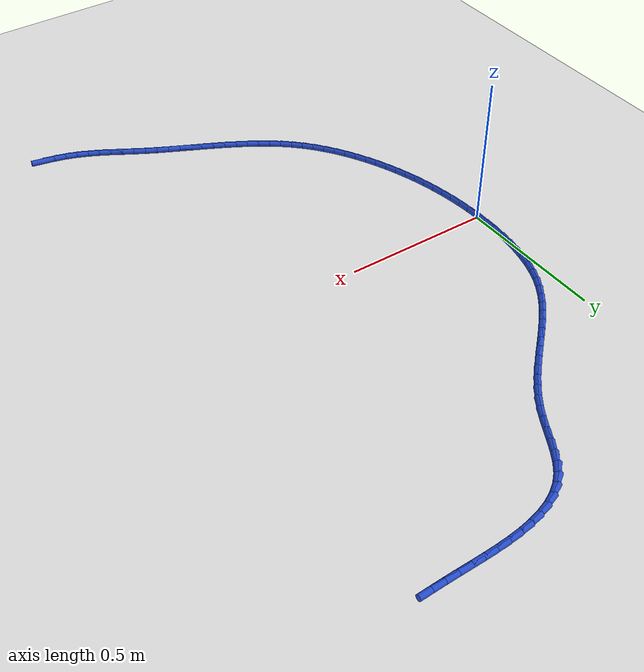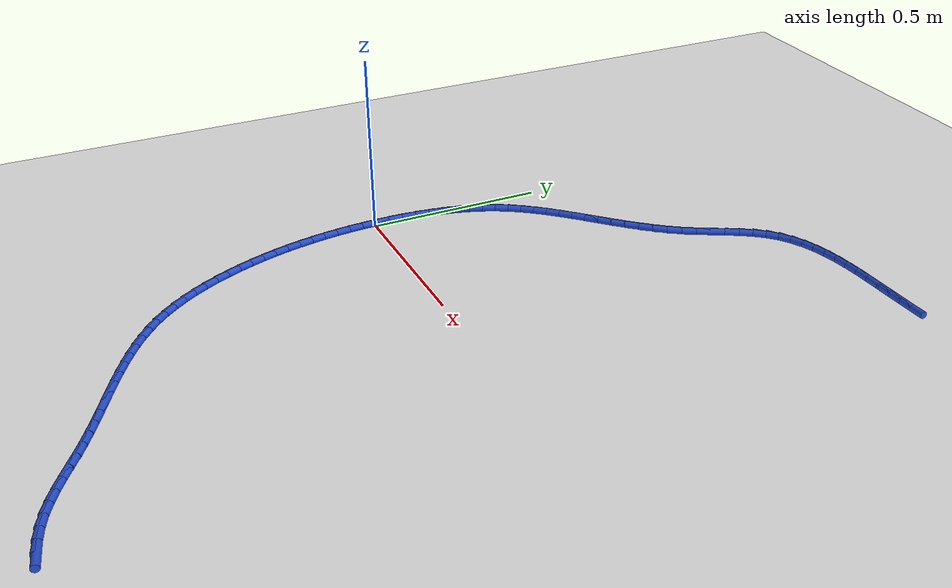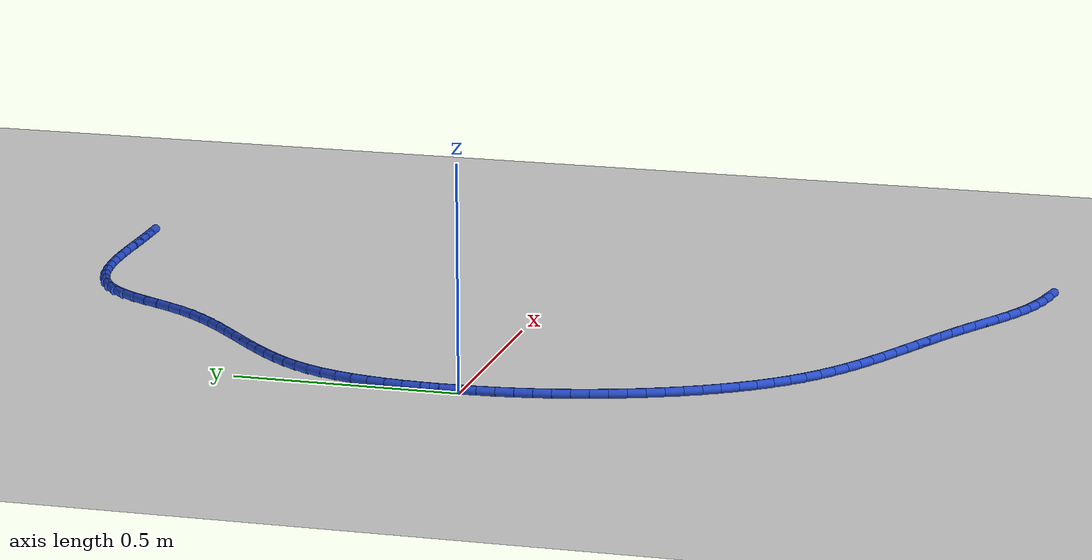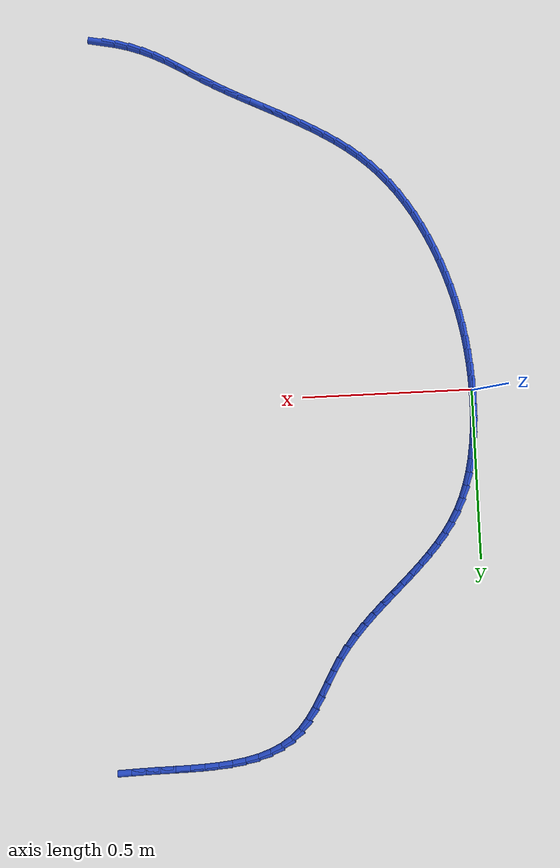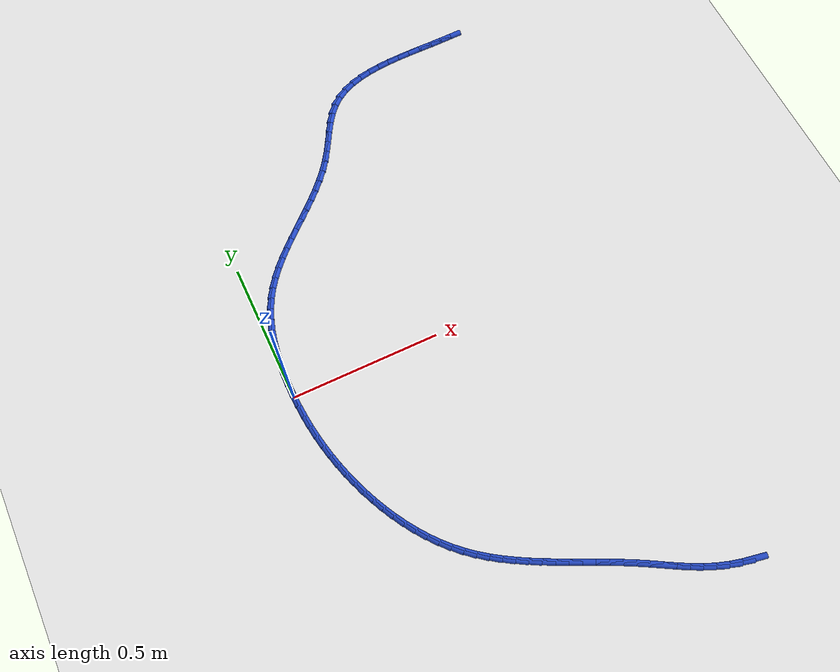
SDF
<sdf version="1.6">
 <world name="default">
  <model name="ground_plane">
   <static>1</static>
   <link name="link">
    <collision name="collision">
     <geometry><plane><normal>0 0 1</normal><size>100 100</size></plane></geometry>
     <surface><friction><ode><mu>100</mu><mu2>50</mu2></ode></friction></surface>
    </collision>
    <visual name="visual">
     <cast_shadows>0</cast_shadows>
     <geometry><plane><normal>0 0 1</normal><size>100 100</size></plane></geometry>
     <material>
      <script><uri>file://media/materials/scripts/gazebo.material</uri><name>Gazebo/WhiteGlow</name></script>
     </material>
    </visual>
   </link>
  </model>
  <model name="line">
   <link name="link_0">
    <pose>5.204170427930421e-18 2.7755575615628914e-17 0.01 0 1.57 -1.560474673501116</pose>
    <collision name="collision">
     <geometry><cylinder><radius>0.01</radius><length>0.08</length></cylinder></geometry>
    </collision>
    <visual name="visual">
     <material>
      <script><name>Gazebo/Blue</name><uri>file://media/materials/scripts/gazebo.material</uri></script>
     </material>
     <geometry><cylinder><radius>0.01</radius><length>0.08</length></cylinder></geometry>
    </visual>
   </link>
   <link name="link_1">
    <pose>-0.00041939425661725123 0.040631025957992235 0.01 0 1.57 1.5458353956558755</pose>
    <collision name="collision">
     <geometry><cylinder><radius>0.01</radius><length>0.08</length></cylinder></geometry>
    </collision>
    <visual name="visual">
     <material>
      <script><name>Gazebo/Blue</name><uri>file://media/materials/scripts/gazebo.material</uri></script>
     </material>
     <geometry><cylinder><radius>0.01</radius><length>0.08</length></cylinder></geometry>
    </visual>
   </link>
   <link name="link_2">
    <pose>0.0005989403063009725 0.08141969117231324 0.01 0 1.57 1.5063570734725502</pose>
    <collision name="collision">
     <geometry><cylinder><radius>0.01</radius><length>0.08</length></cylinder></geometry>
    </collision>
    <visual name="visual">
     <material>
      <script><name>Gazebo/Blue</name><uri>file://media/materials/scripts/gazebo.material</uri></script>
     </material>
     <geometry><cylinder><radius>0.01</radius><length>0.08</length></cylinder></geometry>
    </visual>
   </link>
   <link name="link_3">
    <pose>0.0032256557730024477 0.12212591579390611 0.01 0 1.57 1.4621289086431264</pose>
    <collision name="collision">
     <geometry><cylinder><radius>0.01</radius><length>0.08</length></cylinder></geometry>
    </collision>
    <visual name="visual">
     <material>
      <script><name>Gazebo/Blue</name><uri>file://media/materials/scripts/gazebo.material</uri></script>
     </material>
     <geometry><cylinder><radius>0.01</radius><length>0.08</length></cylinder></geometry>
    </visual>
   </link>
   <link name="link_4">
    <pose>0.007631404227734949 0.16250961997371421 0.01 0 1.57 1.412531463375703</pose>
    <collision name="collision">
     <geometry><cylinder><radius>0.01</radius><length>0.08</length></cylinder></geometry>
    </collision>
    <visual name="visual">
     <material>
      <script><name>Gazebo/Blue</name><uri>file://media/materials/scripts/gazebo.material</uri></script>
     </material>
     <geometry><cylinder><radius>0.01</radius><length>0.08</length></cylinder></geometry>
    </visual>
   </link>
   <link name="link_5">
    <pose>0.013986837754746233 0.20233072386268047 0.01 0 1.57 1.3568946053607458</pose>
    <collision name="collision">
     <geometry><cylinder><radius>0.01</radius><length>0.08</length></cylinder></geometry>
    </collision>
    <visual name="visual">
     <material>
      <script><name>Gazebo/Blue</name><uri>file://media/materials/scripts/gazebo.material</uri></script>
     </material>
     <geometry><cylinder><radius>0.01</radius><length>0.08</length></cylinder></geometry>
    </visual>
   </link>
   <link name="link_6">
    <pose>0.022462608438284078 0.2413491476117482 0.01 0 1.57 1.2945289646001075</pose>
    <collision name="collision">
     <geometry><cylinder><radius>0.01</radius><length>0.08</length></cylinder></geometry>
    </collision>
    <visual name="visual">
     <material>
      <script><name>Gazebo/Blue</name><uri>file://media/materials/scripts/gazebo.material</uri></script>
     </material>
     <geometry><cylinder><radius>0.01</radius><length>0.08</length></cylinder></geometry>
    </visual>
   </link>
   <link name="link_7">
    <pose>0.03322936836259625 0.2793248113718606 0.01 0 1.57 1.2247827890572607</pose>
    <collision name="collision">
     <geometry><cylinder><radius>0.01</radius><length>0.08</length></cylinder></geometry>
    </collision>
    <visual name="visual">
     <material>
      <script><name>Gazebo/Blue</name><uri>file://media/materials/scripts/gazebo.material</uri></script>
     </material>
     <geometry><cylinder><radius>0.01</radius><length>0.08</length></cylinder></geometry>
    </visual>
   </link>
   <link name="link_8">
    <pose>0.04645776961193051 0.31601763529396065 0.01 0 1.57 1.1471331357674486</pose>
    <collision name="collision">
     <geometry><cylinder><radius>0.01</radius><length>0.08</length></cylinder></geometry>
    </collision>
    <visual name="visual">
     <material>
      <script><name>Gazebo/Blue</name><uri>file://media/materials/scripts/gazebo.material</uri></script>
     </material>
     <geometry><cylinder><radius>0.01</radius><length>0.08</length></cylinder></geometry>
    </visual>
   </link>
   <link name="link_9">
    <pose>0.062318464270534626 0.3511875395289916 0.01 0 1.57 1.0624089288465834</pose>
    <collision name="collision">
     <geometry><cylinder><radius>0.01</radius><length>0.08</length></cylinder></geometry>
    </collision>
    <visual name="visual">
     <material>
      <script><name>Gazebo/Blue</name><uri>file://media/materials/scripts/gazebo.material</uri></script>
     </material>
     <geometry><cylinder><radius>0.01</radius><length>0.08</length></cylinder></geometry>
    </visual>
   </link>
   <link name="link_10">
    <pose>0.08095076888299968 0.3846240996175285 0.01 0 1.57 0.9821560411608776</pose>
    <collision name="collision">
     <geometry><cylinder><radius>0.01</radius><length>0.08</length></cylinder></geometry>
    </collision>
    <visual name="visual">
     <material>
      <script><name>Gazebo/Blue</name><uri>file://media/materials/scripts/gazebo.material</uri></script>
     </material>
     <geometry><cylinder><radius>0.01</radius><length>0.08</length></cylinder></geometry>
    </visual>
   </link>
   <link name="link_11">
    <pose>0.10217593487862389 0.4164179021893304 0.01 0 1.57 0.9139354953950708</pose>
    <collision name="collision">
     <geometry><cylinder><radius>0.01</radius><length>0.08</length></cylinder></geometry>
    </collision>
    <visual name="visual">
     <material>
      <script><name>Gazebo/Blue</name><uri>file://media/materials/scripts/gazebo.material</uri></script>
     </material>
     <geometry><cylinder><radius>0.01</radius><length>0.08</length></cylinder></geometry>
    </visual>
   </link>
   <link name="link_12">
    <pose>0.12563001481334368 0.446834802748064 0.01 0 1.57 0.8583358593702851</pose>
    <collision name="collision">
     <geometry><cylinder><radius>0.01</radius><length>0.08</length></cylinder></geometry>
    </collision>
    <visual name="visual">
     <material>
      <script><name>Gazebo/Blue</name><uri>file://media/materials/scripts/gazebo.material</uri></script>
     </material>
     <geometry><cylinder><radius>0.01</radius><length>0.08</length></cylinder></geometry>
    </visual>
   </link>
   <link name="link_13">
    <pose>0.1509467605462268 0.4761428341354215 0.01 0 1.57 0.8153100233511009</pose>
    <collision name="collision">
     <geometry><cylinder><radius>0.01</radius><length>0.08</length></cylinder></geometry>
    </collision>
    <visual name="visual">
     <material>
      <script><name>Gazebo/Blue</name><uri>file://media/materials/scripts/gazebo.material</uri></script>
     </material>
     <geometry><cylinder><radius>0.01</radius><length>0.08</length></cylinder></geometry>
    </visual>
   </link>
   <link name="link_14">
    <pose>0.17775992393634085 0.5046100291930952 0.01 0 1.57 0.7845216713008123</pose>
    <collision name="collision">
     <geometry><cylinder><radius>0.01</radius><length>0.08</length></cylinder></geometry>
    </collision>
    <visual name="visual">
     <material>
      <script><name>Gazebo/Blue</name><uri>file://media/materials/scripts/gazebo.material</uri></script>
     </material>
     <geometry><cylinder><radius>0.01</radius><length>0.08</length></cylinder></geometry>
    </visual>
   </link>
   <link name="link_15">
    <pose>0.2057032568427537 0.5325044207627777 0.01 0 1.57 0.7655482772136365</pose>
    <collision name="collision">
     <geometry><cylinder><radius>0.01</radius><length>0.08</length></cylinder></geometry>
    </collision>
    <visual name="visual">
     <material>
      <script><name>Gazebo/Blue</name><uri>file://media/materials/scripts/gazebo.material</uri></script>
     </material>
     <geometry><cylinder><radius>0.01</radius><length>0.08</length></cylinder></geometry>
    </visual>
   </link>
   <link name="link_16">
    <pose>0.2344105111245332 0.5600940416861612 0.01 0 1.57 0.7580117123435444</pose>
    <collision name="collision">
     <geometry><cylinder><radius>0.01</radius><length>0.08</length></cylinder></geometry>
    </collision>
    <visual name="visual">
     <material>
      <script><name>Gazebo/Blue</name><uri>file://media/materials/scripts/gazebo.material</uri></script>
     </material>
     <geometry><cylinder><radius>0.01</radius><length>0.08</length></cylinder></geometry>
    </visual>
   </link>
   <link name="link_17">
    <pose>0.26351543864074695 0.5876469248049384 0.01 0 1.57 0.7616471518119733</pose>
    <collision name="collision">
     <geometry><cylinder><radius>0.01</radius><length>0.08</length></cylinder></geometry>
    </collision>
    <visual name="visual">
     <material>
      <script><name>Gazebo/Blue</name><uri>file://media/materials/scripts/gazebo.material</uri></script>
     </material>
     <geometry><cylinder><radius>0.01</radius><length>0.08</length></cylinder></geometry>
    </visual>
   </link>
   <link name="link_18">
    <pose>0.29265179125046276 0.6154311029608015 0.01 0 1.57 0.7763238183701574</pose>
    <collision name="collision">
     <geometry><cylinder><radius>0.01</radius><length>0.08</length></cylinder></geometry>
    </collision>
    <visual name="visual">
     <material>
      <script><name>Gazebo/Blue</name><uri>file://media/materials/scripts/gazebo.material</uri></script>
     </material>
     <geometry><cylinder><radius>0.01</radius><length>0.08</length></cylinder></geometry>
    </visual>
   </link>
   <link name="link_19">
    <pose>0.32145332081274836 0.6437146089954429 0.01 0 1.57 0.802026313014735</pose>
    <collision name="collision">
     <geometry><cylinder><radius>0.01</radius><length>0.08</length></cylinder></geometry>
    </collision>
    <visual name="visual">
     <material>
      <script><name>Gazebo/Blue</name><uri>file://media/materials/scripts/gazebo.material</uri></script>
     </material>
     <geometry><cylinder><radius>0.01</radius><length>0.08</length></cylinder></geometry>
    </visual>
   </link>
   <link name="link_20">
    <pose>0.3495537791866714 0.6727654757505548 0.01 0 1.57 0.8387989102687063</pose>
    <collision name="collision">
     <geometry><cylinder><radius>0.01</radius><length>0.08</length></cylinder></geometry>
    </collision>
    <visual name="visual">
     <material>
      <script><name>Gazebo/Blue</name><uri>file://media/materials/scripts/gazebo.material</uri></script>
     </material>
     <geometry><cylinder><radius>0.01</radius><length>0.08</length></cylinder></geometry>
    </visual>
   </link>
   <link name="link_21">
    <pose>0.3765869182312999 0.7028517360678301 0.01 0 1.57 0.8866508350229066</pose>
    <collision name="collision">
     <geometry><cylinder><radius>0.01</radius><length>0.08</length></cylinder></geometry>
    </collision>
    <visual name="visual">
     <material>
      <script><name>Gazebo/Blue</name><uri>file://media/materials/scripts/gazebo.material</uri></script>
     </material>
     <geometry><cylinder><radius>0.01</radius><length>0.08</length></cylinder></geometry>
    </visual>
   </link>
   <link name="link_22">
    <pose>0.4021864898057013 0.7342414227889607 0.01 0 1.57 0.945421279363909</pose>
    <collision name="collision">
     <geometry><cylinder><radius>0.01</radius><length>0.08</length></cylinder></geometry>
    </collision>
    <visual name="visual">
     <material>
      <script><name>Gazebo/Blue</name><uri>file://media/materials/scripts/gazebo.material</uri></script>
     </material>
     <geometry><cylinder><radius>0.01</radius><length>0.08</length></cylinder></geometry>
    </visual>
   </link>
   <link name="link_23">
    <pose>0.4259862457689436 0.7672025687556392 0.01 0 1.57 1.0120313819367213</pose>
    <collision name="collision">
     <geometry><cylinder><radius>0.01</radius><length>0.08</length></cylinder></geometry>
    </collision>
    <visual name="visual">
     <material>
      <script><name>Gazebo/Blue</name><uri>file://media/materials/scripts/gazebo.material</uri></script>
     </material>
     <geometry><cylinder><radius>0.01</radius><length>0.08</length></cylinder></geometry>
    </visual>
   </link>
   <link name="link_24">
    <pose>0.44769590768977613 0.8019252303119604 0.01 0 1.57 1.0593090772187204</pose>
    <collision name="collision">
     <geometry><cylinder><radius>0.01</radius><length>0.08</length></cylinder></geometry>
    </collision>
    <visual name="visual">
     <material>
      <script><name>Gazebo/Blue</name><uri>file://media/materials/scripts/gazebo.material</uri></script>
     </material>
     <geometry><cylinder><radius>0.01</radius><length>0.08</length></cylinder></geometry>
    </visual>
   </link>
   <link name="link_25">
    <pose>0.4678223544851671 0.8377812490384116 0.01 0 1.57 1.07231941583553</pose>
    <collision name="collision">
     <geometry><cylinder><radius>0.01</radius><length>0.08</length></cylinder></geometry>
    </collision>
    <visual name="visual">
     <material>
      <script><name>Gazebo/Blue</name><uri>file://media/materials/scripts/gazebo.material</uri></script>
     </material>
     <geometry><cylinder><radius>0.01</radius><length>0.08</length></cylinder></geometry>
    </visual>
   </link>
   <link name="link_26">
    <pose>0.4873486699594717 0.8736536823748919 0.01 0 1.57 1.0505722540732303</pose>
    <collision name="collision">
     <geometry><cylinder><radius>0.01</radius><length>0.08</length></cylinder></geometry>
    </collision>
    <visual name="visual">
     <material>
      <script><name>Gazebo/Blue</name><uri>file://media/materials/scripts/gazebo.material</uri></script>
     </material>
     <geometry><cylinder><radius>0.01</radius><length>0.08</length></cylinder></geometry>
    </visual>
   </link>
   <link name="link_27">
    <pose>0.5072643263870428 0.9084190305358298 0.01 0 1.57 0.9912541114067657</pose>
    <collision name="collision">
     <geometry><cylinder><radius>0.01</radius><length>0.08</length></cylinder></geometry>
    </collision>
    <visual name="visual">
     <material>
      <script><name>Gazebo/Blue</name><uri>file://media/materials/scripts/gazebo.material</uri></script>
     </material>
     <geometry><cylinder><radius>0.01</radius><length>0.08</length></cylinder></geometry>
    </visual>
   </link>
   <link name="link_28">
    <pose>0.5285587960422333 0.940953793735653 0.01 0 1.57 0.889441335161986</pose>
    <collision name="collision">
     <geometry><cylinder><radius>0.01</radius><length>0.08</length></cylinder></geometry>
    </collision>
    <visual name="visual">
     <material>
      <script><name>Gazebo/Blue</name><uri>file://media/materials/scripts/gazebo.material</uri></script>
     </material>
     <geometry><cylinder><radius>0.01</radius><length>0.08</length></cylinder></geometry>
    </visual>
   </link>
   <link name="link_29">
    <pose>0.5522215511993964 0.9701344721887895 0.01 0 1.57 0.7428690734591776</pose>
    <collision name="collision">
     <geometry><cylinder><radius>0.01</radius><length>0.08</length></cylinder></geometry>
    </collision>
    <visual name="visual">
     <material>
      <script><name>Gazebo/Blue</name><uri>file://media/materials/scripts/gazebo.material</uri></script>
     </material>
     <geometry><cylinder><radius>0.01</radius><length>0.08</length></cylinder></geometry>
    </visual>
   </link>
   <link name="link_30">
    <pose>0.5791879028655661 0.9948994117107092 0.01 0 1.57 0.5851730743979048</pose>
    <collision name="collision">
     <geometry><cylinder><radius>0.01</radius><length>0.08</length></cylinder></geometry>
    </collision>
    <visual name="visual">
     <material>
      <script><name>Gazebo/Blue</name><uri>file://media/materials/scripts/gazebo.material</uri></script>
     </material>
     <geometry><cylinder><radius>0.01</radius><length>0.08</length></cylinder></geometry>
    </visual>
   </link>
   <link name="link_31">
    <pose>0.6096235933495142 1.0150657122717237 0.01 0 1.57 0.44652051022033024</pose>
    <collision name="collision">
     <geometry><cylinder><radius>0.01</radius><length>0.08</length></cylinder></geometry>
    </collision>
    <visual name="visual">
     <material>
      <script><name>Gazebo/Blue</name><uri>file://media/materials/scripts/gazebo.material</uri></script>
     </material>
     <geometry><cylinder><radius>0.01</radius><length>0.08</length></cylinder></geometry>
    </visual>
   </link>
   <link name="link_32">
    <pose>0.6431221680921743 1.0311038532949905 0.01 0 1.57 0.3304124110964919</pose>
    <collision name="collision">
     <geometry><cylinder><radius>0.01</radius><length>0.08</length></cylinder></geometry>
    </collision>
    <visual name="visual">
     <material>
      <script><name>Gazebo/Blue</name><uri>file://media/materials/scripts/gazebo.material</uri></script>
     </material>
     <geometry><cylinder><radius>0.01</radius><length>0.08</length></cylinder></geometry>
    </visual>
   </link>
   <link name="link_33">
    <pose>0.6792635755675412 1.0434998402914855 0.01 0 1.57 0.2363441870183302</pose>
    <collision name="collision">
     <geometry><cylinder><radius>0.01</radius><length>0.08</length></cylinder></geometry>
    </collision>
    <visual name="visual">
     <material>
      <script><name>Gazebo/Blue</name><uri>file://media/materials/scripts/gazebo.material</uri></script>
     </material>
     <geometry><cylinder><radius>0.01</radius><length>0.08</length></cylinder></geometry>
    </visual>
   </link>
   <link name="link_34">
    <pose>0.7176277642496095 1.0527396787721834 0.01 0 1.57 0.16212432237030058</pose>
    <collision name="collision">
     <geometry><cylinder><radius>0.01</radius><length>0.08</length></cylinder></geometry>
    </collision>
    <visual name="visual">
     <material>
      <script><name>Gazebo/Blue</name><uri>file://media/materials/scripts/gazebo.material</uri></script>
     </material>
     <geometry><cylinder><radius>0.01</radius><length>0.08</length></cylinder></geometry>
    </visual>
   </link>
   <link name="link_35">
    <pose>0.7577946826123735 1.0593093742480604 0.01 0 1.57 0.10516058293300554</pose>
    <collision name="collision">
     <geometry><cylinder><radius>0.01</radius><length>0.08</length></cylinder></geometry>
    </collision>
    <visual name="visual">
     <material>
      <script><name>Gazebo/Blue</name><uri>file://media/materials/scripts/gazebo.material</uri></script>
     </material>
     <geometry><cylinder><radius>0.01</radius><length>0.08</length></cylinder></geometry>
    </visual>
   </link>
   <link name="link_36">
    <pose>0.7993442791298286 1.0636949322300915 0.01 0 1.57 0.0631313665549837</pose>
    <collision name="collision">
     <geometry><cylinder><radius>0.01</radius><length>0.08</length></cylinder></geometry>
    </collision>
    <visual name="visual">
     <material>
      <script><name>Gazebo/Blue</name><uri>file://media/materials/scripts/gazebo.material</uri></script>
     </material>
     <geometry><cylinder><radius>0.01</radius><length>0.08</length></cylinder></geometry>
    </visual>
   </link>
   <link name="link_37">
    <pose>0.8418565022759693 1.0663823582292529 0.01 0 1.57 0.03425222261847</pose>
    <collision name="collision">
     <geometry><cylinder><radius>0.01</radius><length>0.08</length></cylinder></geometry>
    </collision>
    <visual name="visual">
     <material>
      <script><name>Gazebo/Blue</name><uri>file://media/materials/scripts/gazebo.material</uri></script>
     </material>
     <geometry><cylinder><radius>0.01</radius><length>0.08</length></cylinder></geometry>
    </visual>
   </link>
   <link name="link_38">
    <pose>0.8849113005247897 1.0678576577565195 0.01 0 1.57 0.017349464130928447</pose>
    <collision name="collision">
     <geometry><cylinder><radius>0.01</radius><length>0.08</length></cylinder></geometry>
    </collision>
    <visual name="visual">
     <material>
      <script><name>Gazebo/Blue</name><uri>file://media/materials/scripts/gazebo.material</uri></script>
     </material>
     <geometry><cylinder><radius>0.01</radius><length>0.08</length></cylinder></geometry>
    </visual>
   </link>
   <link name="link_39">
    <pose>0.9280886223502853 1.0686068363228671 0.01 0 1.57 0.011871307122232182</pose>
    <collision name="collision">
     <geometry><cylinder><radius>0.01</radius><length>0.08</length></cylinder></geometry>
    </collision>
    <visual name="visual">
     <material>
      <script><name>Gazebo/Blue</name><uri>file://media/materials/scripts/gazebo.material</uri></script>
     </material>
     <geometry><cylinder><radius>0.01</radius><length>0.08</length></cylinder></geometry>
    </visual>
   </link>
   <link name="link_40">
    <pose>0.9709684162264505 1.0691158994392713 0.01 0 1.57 0.01777152209160328</pose>
    <collision name="collision">
     <geometry><cylinder><radius>0.01</radius><length>0.08</length></cylinder></geometry>
    </collision>
    <visual name="visual">
     <material>
      <script><name>Gazebo/Blue</name><uri>file://media/materials/scripts/gazebo.material</uri></script>
     </material>
     <geometry><cylinder><radius>0.01</radius><length>0.08</length></cylinder></geometry>
    </visual>
   </link>
   <link name="link_41">
    <pose>1.0131344743179589 1.0698653333709778 0.01 0 1.57 0.028245616850283622</pose>
    <collision name="collision">
     <geometry><cylinder><radius>0.01</radius><length>0.08</length></cylinder></geometry>
    </collision>
    <visual name="visual">
     <material>
      <script><name>Gazebo/Blue</name><uri>file://media/materials/scripts/gazebo.material</uri></script>
     </material>
     <geometry><cylinder><radius>0.01</radius><length>0.08</length></cylinder></geometry>
    </visual>
   </link>
   <link name="link_42">
    <pose>1.0543829213023512 1.071030731140544 0.01 0 1.57 0.032102971587393156</pose>
    <collision name="collision">
     <geometry><cylinder><radius>0.01</radius><length>0.08</length></cylinder></geometry>
    </collision>
    <visual name="visual">
     <material>
      <script><name>Gazebo/Blue</name><uri>file://media/materials/scripts/gazebo.material</uri></script>
     </material>
     <geometry><cylinder><radius>0.01</radius><length>0.08</length></cylinder></geometry>
    </visual>
   </link>
   <link name="link_129">
    <pose>1.0430165044025075 -1.0834563771202934 0.01 0 1.57 -0.1924655537536434</pose>
    <collision name="collision">
     <geometry><cylinder><radius>0.01</radius><length>0.08</length></cylinder></geometry>
    </collision>
    <visual name="visual">
     <material>
      <script><name>Gazebo/Blue</name><uri>file://media/materials/scripts/gazebo.material</uri></script>
     </material>
     <geometry><cylinder><radius>0.01</radius><length>0.08</length></cylinder></geometry>
    </visual>
   </link>
   <link name="link_130">
    <pose>1.003807774819887 -1.0758154660543615 0.01 0 1.57 -0.26107178223244676</pose>
    <collision name="collision">
     <geometry><cylinder><radius>0.01</radius><length>0.08</length></cylinder></geometry>
    </collision>
    <visual name="visual">
     <material>
      <script><name>Gazebo/Blue</name><uri>file://media/materials/scripts/gazebo.material</uri></script>
     </material>
     <geometry><cylinder><radius>0.01</radius><length>0.08</length></cylinder></geometry>
    </visual>
   </link>
   <link name="link_131">
    <pose>0.9654360566328103 -1.0655637133302607 0.01 0 1.57 -0.3324941737917384</pose>
    <collision name="collision">
     <geometry><cylinder><radius>0.01</radius><length>0.08</length></cylinder></geometry>
    </collision>
    <visual name="visual">
     <material>
      <script><name>Gazebo/Blue</name><uri>file://media/materials/scripts/gazebo.material</uri></script>
     </material>
     <geometry><cylinder><radius>0.01</radius><length>0.08</length></cylinder></geometry>
    </visual>
   </link>
   <link name="link_132">
    <pose>0.928106527487957 -1.052673302264326 0.01 0 1.57 -0.4043941610660592</pose>
    <collision name="collision">
     <geometry><cylinder><radius>0.01</radius><length>0.08</length></cylinder></geometry>
    </collision>
    <visual name="visual">
     <material>
      <script><name>Gazebo/Blue</name><uri>file://media/materials/scripts/gazebo.material</uri></script>
     </material>
     <geometry><cylinder><radius>0.01</radius><length>0.08</length></cylinder></geometry>
    </visual>
   </link>
   <link name="link_133">
    <pose>0.8919543679589335 -1.0372008096238938 0.01 0 1.57 -0.4629735728298897</pose>
    <collision name="collision">
     <geometry><cylinder><radius>0.01</radius><length>0.08</length></cylinder></geometry>
    </collision>
    <visual name="visual">
     <material>
      <script><name>Gazebo/Blue</name><uri>file://media/materials/scripts/gazebo.material</uri></script>
     </material>
     <geometry><cylinder><radius>0.01</radius><length>0.08</length></cylinder></geometry>
    </visual>
   </link>
   <link name="link_134">
    <pose>0.8567583962618535 -1.0196324679867008 0.01 0 1.57 -0.5034164021545839</pose>
    <collision name="collision">
     <geometry><cylinder><radius>0.01</radius><length>0.08</length></cylinder></geometry>
    </collision>
    <visual name="visual">
     <material>
      <script><name>Gazebo/Blue</name><uri>file://media/materials/scripts/gazebo.material</uri></script>
     </material>
     <geometry><cylinder><radius>0.01</radius><length>0.08</length></cylinder></geometry>
    </visual>
   </link>
   <link name="link_135">
    <pose>0.8221843078164646 -1.0005908988215266 0.01 0 1.57 -0.5257129185892814</pose>
    <collision name="collision">
     <geometry><cylinder><radius>0.01</radius><length>0.08</length></cylinder></geometry>
    </collision>
    <visual name="visual">
     <material>
      <script><name>Gazebo/Blue</name><uri>file://media/materials/scripts/gazebo.material</uri></script>
     </material>
     <geometry><cylinder><radius>0.01</radius><length>0.08</length></cylinder></geometry>
    </visual>
   </link>
   <link name="link_136">
    <pose>0.787897751823687 -0.9806987793218543 0.01 0 1.57 -0.5300755499299734</pose>
    <collision name="collision">
     <geometry><cylinder><radius>0.01</radius><length>0.08</length></cylinder></geometry>
    </collision>
    <visual name="visual">
     <material>
      <script><name>Gazebo/Blue</name><uri>file://media/materials/scripts/gazebo.material</uri></script>
     </material>
     <geometry><cylinder><radius>0.01</radius><length>0.08</length></cylinder></geometry>
    </visual>
   </link>
   <link name="link_137">
    <pose>0.7535643774844445 -0.9605787866811683 0.01 0 1.57 -0.5167364445341639</pose>
    <collision name="collision">
     <geometry><cylinder><radius>0.01</radius><length>0.08</length></cylinder></geometry>
    </collision>
    <visual name="visual">
     <material>
      <script><name>Gazebo/Blue</name><uri>file://media/materials/scripts/gazebo.material</uri></script>
     </material>
     <geometry><cylinder><radius>0.01</radius><length>0.08</length></cylinder></geometry>
    </visual>
   </link>
   <link name="link_138">
    <pose>0.7188502288026611 -0.9408529417222358 0.01 0 1.57 -0.4922605518929212</pose>
    <collision name="collision">
     <geometry><cylinder><radius>0.01</radius><length>0.08</length></cylinder></geometry>
    </collision>
    <visual name="visual">
     <material>
      <script><name>Gazebo/Blue</name><uri>file://media/materials/scripts/gazebo.material</uri></script>
     </material>
     <geometry><cylinder><radius>0.01</radius><length>0.08</length></cylinder></geometry>
    </visual>
   </link>
   <link name="link_139">
    <pose>0.6835535416041599 -0.9219234927740801 0.01 0 1.57 -0.47232345067953435</pose>
    <collision name="collision">
     <geometry><cylinder><radius>0.01</radius><length>0.08</length></cylinder></geometry>
    </collision>
    <visual name="visual">
     <material>
      <script><name>Gazebo/Blue</name><uri>file://media/materials/scripts/gazebo.material</uri></script>
     </material>
     <geometry><cylinder><radius>0.01</radius><length>0.08</length></cylinder></geometry>
    </visual>
   </link>
   <link name="link_140">
    <pose>0.6477958653806808 -0.9036551704161312 0.01 0 1.57 -0.4591729058862908</pose>
    <collision name="collision">
     <geometry><cylinder><radius>0.01</radius><length>0.08</length></cylinder></geometry>
    </collision>
    <visual name="visual">
     <material>
      <script><name>Gazebo/Blue</name><uri>file://media/materials/scripts/gazebo.material</uri></script>
     </material>
     <geometry><cylinder><radius>0.01</radius><length>0.08</length></cylinder></geometry>
    </visual>
   </link>
   <link name="link_141">
    <pose>0.6117472613696386 -0.8858320531332339 0.01 0 1.57 -0.45273096470674734</pose>
    <collision name="collision">
     <geometry><cylinder><radius>0.01</radius><length>0.08</length></cylinder></geometry>
    </collision>
    <visual name="visual">
     <material>
      <script><name>Gazebo/Blue</name><uri>file://media/materials/scripts/gazebo.material</uri></script>
     </material>
     <geometry><cylinder><radius>0.01</radius><length>0.08</length></cylinder></geometry>
    </visual>
   </link>
   <link name="link_142">
    <pose>0.5755777908084485 -0.8682382194102333 0.01 0 1.57 -0.4529675253703165</pose>
    <collision name="collision">
     <geometry><cylinder><radius>0.01</radius><length>0.08</length></cylinder></geometry>
    </collision>
    <visual name="visual">
     <material>
      <script><name>Gazebo/Blue</name><uri>file://media/materials/scripts/gazebo.material</uri></script>
     </material>
     <geometry><cylinder><radius>0.01</radius><length>0.08</length></cylinder></geometry>
    </visual>
   </link>
   <link name="link_143">
    <pose>0.5394575149345266 -0.850657747731975 0.01 0 1.57 -0.4599086367916293</pose>
    <collision name="collision">
     <geometry><cylinder><radius>0.01</radius><length>0.08</length></cylinder></geometry>
    </collision>
    <visual name="visual">
     <material>
      <script><name>Gazebo/Blue</name><uri>file://media/materials/scripts/gazebo.material</uri></script>
     </material>
     <geometry><cylinder><radius>0.01</radius><length>0.08</length></cylinder></geometry>
    </visual>
   </link>
   <link name="link_144">
    <pose>0.5035564949852879 -0.832874716583304 0.01 0 1.57 -0.4736368794539055</pose>
    <collision name="collision">
     <geometry><cylinder><radius>0.01</radius><length>0.08</length></cylinder></geometry>
    </collision>
    <visual name="visual">
     <material>
      <script><name>Gazebo/Blue</name><uri>file://media/materials/scripts/gazebo.material</uri></script>
     </material>
     <geometry><cylinder><radius>0.01</radius><length>0.08</length></cylinder></geometry>
    </visual>
   </link>
   <link name="link_145">
    <pose>0.46804479219814715 -0.8146732044490652 0.01 0 1.57 -0.49428358780816817</pose>
    <collision name="collision">
     <geometry><cylinder><radius>0.01</radius><length>0.08</length></cylinder></geometry>
    </collision>
    <visual name="visual">
     <material>
      <script><name>Gazebo/Blue</name><uri>file://media/materials/scripts/gazebo.material</uri></script>
     </material>
     <geometry><cylinder><radius>0.01</radius><length>0.08</length></cylinder></geometry>
    </visual>
   </link>
   <link name="link_146">
    <pose>0.43309246781051997 -0.795837289814104 0.01 0 1.57 -0.5220116948459521</pose>
    <collision name="collision">
     <geometry><cylinder><radius>0.01</radius><length>0.08</length></cylinder></geometry>
    </collision>
    <visual name="visual">
     <material>
      <script><name>Gazebo/Blue</name><uri>file://media/materials/scripts/gazebo.material</uri></script>
     </material>
     <geometry><cylinder><radius>0.01</radius><length>0.08</length></cylinder></geometry>
    </visual>
   </link>
   <link name="link_147">
    <pose>0.39886958305982056 -0.7761510511632651 0.01 0 1.57 -0.5569872018599233</pose>
    <collision name="collision">
     <geometry><cylinder><radius>0.01</radius><length>0.08</length></cylinder></geometry>
    </collision>
    <visual name="visual">
     <material>
      <script><name>Gazebo/Blue</name><uri>file://media/materials/scripts/gazebo.material</uri></script>
     </material>
     <geometry><cylinder><radius>0.01</radius><length>0.08</length></cylinder></geometry>
    </visual>
   </link>
   <link name="link_148">
    <pose>0.3655461991834658 -0.7553985669813942 0.01 0 1.57 -0.5993370712955874</pose>
    <collision name="collision">
     <geometry><cylinder><radius>0.01</radius><length>0.08</length></cylinder></geometry>
    </collision>
    <visual name="visual">
     <material>
      <script><name>Gazebo/Blue</name><uri>file://media/materials/scripts/gazebo.material</uri></script>
     </material>
     <geometry><cylinder><radius>0.01</radius><length>0.08</length></cylinder></geometry>
    </visual>
   </link>
   <link name="link_149">
    <pose>0.33329237741887 -0.7333639157533363 0.01 0 1.57 -0.6490922957507699</pose>
    <collision name="collision">
     <geometry><cylinder><radius>0.01</radius><length>0.08</length></cylinder></geometry>
    </collision>
    <visual name="visual">
     <material>
      <script><name>Gazebo/Blue</name><uri>file://media/materials/scripts/gazebo.material</uri></script>
     </material>
     <geometry><cylinder><radius>0.01</radius><length>0.08</length></cylinder></geometry>
    </visual>
   </link>
   <link name="link_150">
    <pose>0.3022781790034487 -0.7098311759639365 0.01 0 1.57 -0.7061177645130111</pose>
    <collision name="collision">
     <geometry><cylinder><radius>0.01</radius><length>0.08</length></cylinder></geometry>
    </collision>
    <visual name="visual">
     <material>
      <script><name>Gazebo/Blue</name><uri>file://media/materials/scripts/gazebo.material</uri></script>
     </material>
     <geometry><cylinder><radius>0.01</radius><length>0.08</length></cylinder></geometry>
    </visual>
   </link>
   <link name="link_151">
    <pose>0.2726736651746169 -0.6845844260980399 0.01 0 1.57 -0.7696627075020995</pose>
    <collision name="collision">
     <geometry><cylinder><radius>0.01</radius><length>0.08</length></cylinder></geometry>
    </collision>
    <visual name="visual">
     <material>
      <script><name>Gazebo/Blue</name><uri>file://media/materials/scripts/gazebo.material</uri></script>
     </material>
     <geometry><cylinder><radius>0.01</radius><length>0.08</length></cylinder></geometry>
    </visual>
   </link>
   <link name="link_152">
    <pose>0.24464235857547273 -0.6574216945408909 0.01 0 1.57 -0.8334577654623805</pose>
    <collision name="collision">
     <geometry><cylinder><radius>0.01</radius><length>0.08</length></cylinder></geometry>
    </collision>
    <visual name="visual">
     <material>
      <script><name>Gazebo/Blue</name><uri>file://media/materials/scripts/gazebo.material</uri></script>
     </material>
     <geometry><cylinder><radius>0.01</radius><length>0.08</length></cylinder></geometry>
    </visual>
   </link>
   <link name="link_153">
    <pose>0.2182460834028421 -0.6283579803487218 0.01 0 1.57 -0.8929518664801112</pose>
    <collision name="collision">
     <geometry><cylinder><radius>0.01</radius><length>0.08</length></cylinder></geometry>
    </collision>
    <visual name="visual">
     <material>
      <script><name>Gazebo/Blue</name><uri>file://media/materials/scripts/gazebo.material</uri></script>
     </material>
     <geometry><cylinder><radius>0.01</radius><length>0.08</length></cylinder></geometry>
    </visual>
   </link>
   <link name="link_154">
    <pose>0.19346635289425748 -0.5975796236686526 0.01 0 1.57 -0.9482750257055992</pose>
    <collision name="collision">
     <geometry><cylinder><radius>0.01</radius><length>0.08</length></cylinder></geometry>
    </collision>
    <visual name="visual">
     <material>
      <script><name>Gazebo/Blue</name><uri>file://media/materials/scripts/gazebo.material</uri></script>
     </material>
     <geometry><cylinder><radius>0.01</radius><length>0.08</length></cylinder></geometry>
    </visual>
   </link>
   <link name="link_155">
    <pose>0.17028249407910212 -0.5652776288591665 0.01 0 1.57 -0.9997450305932422</pose>
    <collision name="collision">
     <geometry><cylinder><radius>0.01</radius><length>0.08</length></cylinder></geometry>
    </collision>
    <visual name="visual">
     <material>
      <script><name>Gazebo/Blue</name><uri>file://media/materials/scripts/gazebo.material</uri></script>
     </material>
     <geometry><cylinder><radius>0.01</radius><length>0.08</length></cylinder></geometry>
    </visual>
   </link>
   <link name="link_156">
    <pose>0.14867383398675973 -0.5316430002787468 0.01 0 1.57 -1.0477141690458287</pose>
    <collision name="collision">
     <geometry><cylinder><radius>0.01</radius><length>0.08</length></cylinder></geometry>
    </collision>
    <visual name="visual">
     <material>
      <script><name>Gazebo/Blue</name><uri>file://media/materials/scripts/gazebo.material</uri></script>
     </material>
     <geometry><cylinder><radius>0.01</radius><length>0.08</length></cylinder></geometry>
    </visual>
   </link>
   <link name="link_157">
    <pose>0.12861969964661393 -0.49686674228587674 0.01 0 1.57 -1.0925490997177736</pose>
    <collision name="collision">
     <geometry><cylinder><radius>0.01</radius><length>0.08</length></cylinder></geometry>
    </collision>
    <visual name="visual">
     <material>
      <script><name>Gazebo/Blue</name><uri>file://media/materials/scripts/gazebo.material</uri></script>
     </material>
     <geometry><cylinder><radius>0.01</radius><length>0.08</length></cylinder></geometry>
    </visual>
   </link>
   <link name="link_158">
    <pose>0.1100994180880481 -0.461139859239039 0.01 0 1.57 -1.1346178819027621</pose>
    <collision name="collision">
     <geometry><cylinder><radius>0.01</radius><length>0.08</length></cylinder></geometry>
    </collision>
    <visual name="visual">
     <material>
      <script><name>Gazebo/Blue</name><uri>file://media/materials/scripts/gazebo.material</uri></script>
     </material>
     <geometry><cylinder><radius>0.01</radius><length>0.08</length></cylinder></geometry>
    </visual>
   </link>
   <link name="link_159">
    <pose>0.0930923163404466 -0.42465335549671823 0.01 0 1.57 -1.174282728502881</pose>
    <collision name="collision">
     <geometry><cylinder><radius>0.01</radius><length>0.08</length></cylinder></geometry>
    </collision>
    <visual name="visual">
     <material>
      <script><name>Gazebo/Blue</name><uri>file://media/materials/scripts/gazebo.material</uri></script>
     </material>
     <geometry><cylinder><radius>0.01</radius><length>0.08</length></cylinder></geometry>
    </visual>
   </link>
   <link name="link_160">
    <pose>0.07757772143319279 -0.38759823541739713 0.01 0 1.57 -1.2119050015732367</pose>
    <collision name="collision">
     <geometry><cylinder><radius>0.01</radius><length>0.08</length></cylinder></geometry>
    </collision>
    <visual name="visual">
     <material>
      <script><name>Gazebo/Blue</name><uri>file://media/materials/scripts/gazebo.material</uri></script>
     </material>
     <geometry><cylinder><radius>0.01</radius><length>0.08</length></cylinder></geometry>
    </visual>
   </link>
   <link name="link_161">
    <pose>0.0635349613050439 -0.35016461354244677 0.01 0 1.57 -1.2484017488894956</pose>
    <collision name="collision">
     <geometry><cylinder><radius>0.01</radius><length>0.08</length></cylinder></geometry>
    </collision>
    <visual name="visual">
     <material>
      <script><name>Gazebo/Blue</name><uri>file://media/materials/scripts/gazebo.material</uri></script>
     </material>
     <geometry><cylinder><radius>0.01</radius><length>0.08</length></cylinder></geometry>
    </visual>
   </link>
   <link name="link_162">
    <pose>0.050943437096475204 -0.3124709769298593 0.01 0 1.57 -1.2848275434403895</pose>
    <collision name="collision">
     <geometry><cylinder><radius>0.01</radius><length>0.08</length></cylinder></geometry>
    </collision>
    <visual name="visual">
     <material>
      <script><name>Gazebo/Blue</name><uri>file://media/materials/scripts/gazebo.material</uri></script>
     </material>
     <geometry><cylinder><radius>0.01</radius><length>0.08</length></cylinder></geometry>
    </visual>
   </link>
   <link name="link_163">
    <pose>0.0397826756663986 -0.27451279783011 0.01 0 1.57 -1.3211315776021682</pose>
    <collision name="collision">
     <geometry><cylinder><radius>0.01</radius><length>0.08</length></cylinder></geometry>
    </collision>
    <visual name="visual">
     <material>
      <script><name>Gazebo/Blue</name><uri>file://media/materials/scripts/gazebo.material</uri></script>
     </material>
     <geometry><cylinder><radius>0.01</radius><length>0.08</length></cylinder></geometry>
    </visual>
   </link>
   <link name="link_164">
    <pose>0.03003221625941395 -0.23627342916592223 0.01 0 1.57 -1.357157779289179</pose>
    <collision name="collision">
     <geometry><cylinder><radius>0.01</radius><length>0.08</length></cylinder></geometry>
    </collision>
    <visual name="visual">
     <material>
      <script><name>Gazebo/Blue</name><uri>file://media/materials/scripts/gazebo.material</uri></script>
     </material>
     <geometry><cylinder><radius>0.01</radius><length>0.08</length></cylinder></geometry>
    </visual>
   </link>
   <link name="link_165">
    <pose>0.021671598120120435 -0.19773622386001716 0.01 0 1.57 -1.392754906681817</pose>
    <collision name="collision">
     <geometry><cylinder><radius>0.01</radius><length>0.08</length></cylinder></geometry>
    </collision>
    <visual name="visual">
     <material>
      <script><name>Gazebo/Blue</name><uri>file://media/materials/scripts/gazebo.material</uri></script>
     </material>
     <geometry><cylinder><radius>0.01</radius><length>0.08</length></cylinder></geometry>
    </visual>
   </link>
   <link name="link_166">
    <pose>0.014680360493117507 -0.15888453483511675 0.01 0 1.57 -1.4277796564575258</pose>
    <collision name="collision">
     <geometry><cylinder><radius>0.01</radius><length>0.08</length></cylinder></geometry>
    </collision>
    <visual name="visual">
     <material>
      <script><name>Gazebo/Blue</name><uri>file://media/materials/scripts/gazebo.material</uri></script>
     </material>
     <geometry><cylinder><radius>0.01</radius><length>0.08</length></cylinder></geometry>
    </visual>
   </link>
   <link name="link_167">
    <pose>0.009038042623004571 -0.11970171501394299 0.01 0 1.57 -1.46209936129727</pose>
    <collision name="collision">
     <geometry><cylinder><radius>0.01</radius><length>0.08</length></cylinder></geometry>
    </collision>
    <visual name="visual">
     <material>
      <script><name>Gazebo/Blue</name><uri>file://media/materials/scripts/gazebo.material</uri></script>
     </material>
     <geometry><cylinder><radius>0.01</radius><length>0.08</length></cylinder></geometry>
    </visual>
   </link>
   <link name="link_168">
    <pose>0.004724183754380993 -0.08017111731921703 0.01 0 1.57 -1.4955941619015467</pose>
    <collision name="collision">
     <geometry><cylinder><radius>0.01</radius><length>0.08</length></cylinder></geometry>
    </collision>
    <visual name="visual">
     <material>
      <script><name>Gazebo/Blue</name><uri>file://media/materials/scripts/gazebo.material</uri></script>
     </material>
     <geometry><cylinder><radius>0.01</radius><length>0.08</length></cylinder></geometry>
    </visual>
   </link>
   <link name="link_169">
    <pose>0.0017183231318463606 -0.04027609467366234 0.01 0 1.57 -1.5281585852539217</pose>
    <collision name="collision">
     <geometry><cylinder><radius>0.01</radius><length>0.08</length></cylinder></geometry>
    </collision>
    <visual name="visual">
     <material>
      <script><name>Gazebo/Blue</name><uri>file://media/materials/scripts/gazebo.material</uri></script>
     </material>
     <geometry><cylinder><radius>0.01</radius><length>0.08</length></cylinder></geometry>
    </visual>
   </link>
   <link name="link_170">
    <pose>7.806255641895632e-18 -5.551115123125783e-17 0.01 0 1.57 -1.559702508870518</pose>
    <collision name="collision">
     <geometry><cylinder><radius>0.01</radius><length>0.08</length></cylinder></geometry>
    </collision>
    <visual name="visual">
     <material>
      <script><name>Gazebo/Blue</name><uri>file://media/materials/scripts/gazebo.material</uri></script>
     </material>
     <geometry><cylinder><radius>0.01</radius><length>0.08</length></cylinder></geometry>
    </visual>
   </link>
   <link name="link_171">
    <pose>-0.00045124639655864246 0.04067381377904781 0.01 0 1.57 -1.559702508870518</pose>
    <collision name="collision">
     <geometry><cylinder><radius>0.01</radius><length>0.08</length></cylinder></geometry>
    </collision>
    <visual name="visual">
     <material>
      <script><name>Gazebo/Blue</name><uri>file://media/materials/scripts/gazebo.material</uri></script>
     </material>
     <geometry><cylinder><radius>0.01</radius><length>0.08</length></cylinder></geometry>
    </visual>
   </link>
  </model>
 </world>
</sdf>
